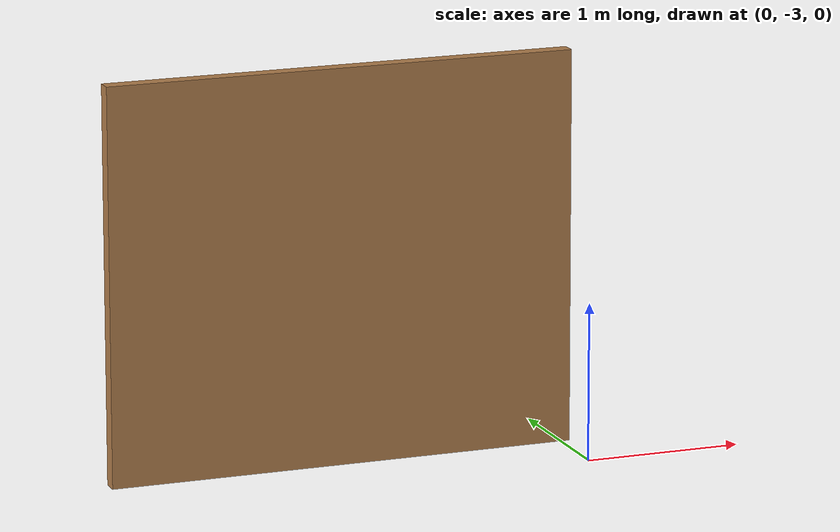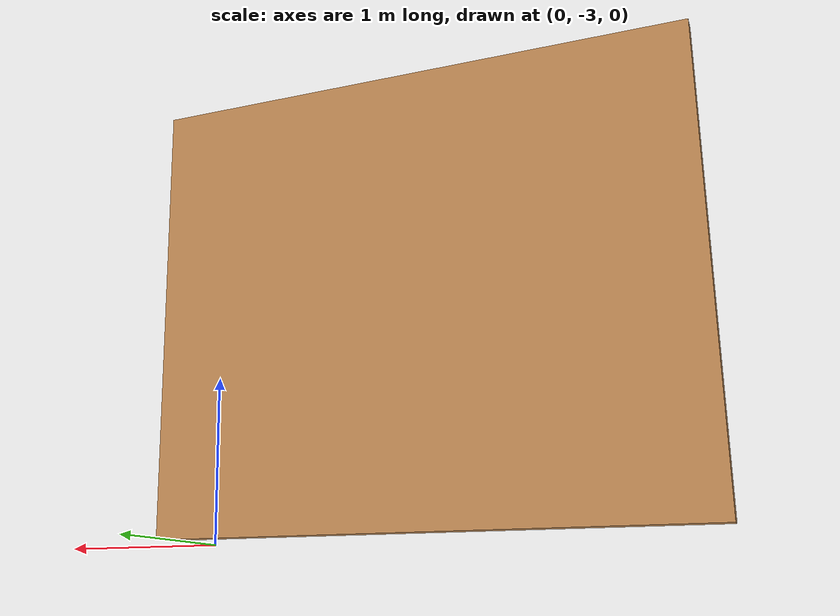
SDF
<?xml version='1.0'?>
<sdf version='1.7'>
  <model name='single_wall'>
    <pose>-1.44 -1.27 0 0 -0 0</pose>
    <link name='Wall_0'>
      <collision name='Wall_0_Collision'>
        <geometry>
          <box>
            <size>3 0.1 2.5</size>
          </box>
        </geometry>
        <pose>0 0 1.25 0 -0 0</pose>
      </collision>
      <visual name='Wall_0_Visual'>
        <pose>0 0 1.25 0 -0 0</pose>
        <geometry>
          <box>
            <size>3 0.1 2.5</size>
          </box>
        </geometry>
        <material>
          <script>
            <uri>file://media/materials/scripts/gazebo.material</uri>
            <name>Gazebo/Wood</name>
          </script>
          <ambient>1 1 1 1</ambient>
        </material>
        <meta>
          <layer>0</layer>
        </meta>
      </visual>
      <pose>0 -1.22 0 0 -0 0</pose>
    </link>
    <static>1</static>
  </model>
</sdf>
